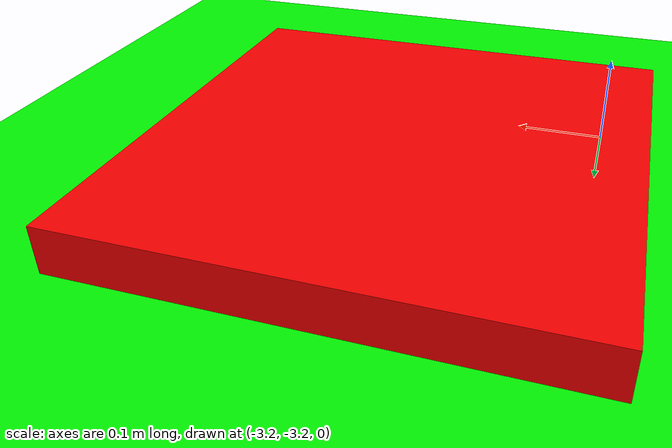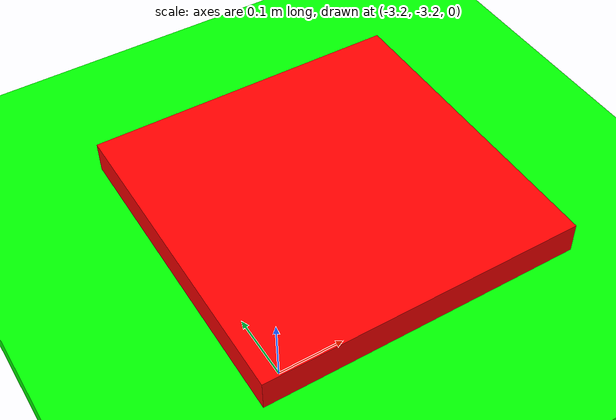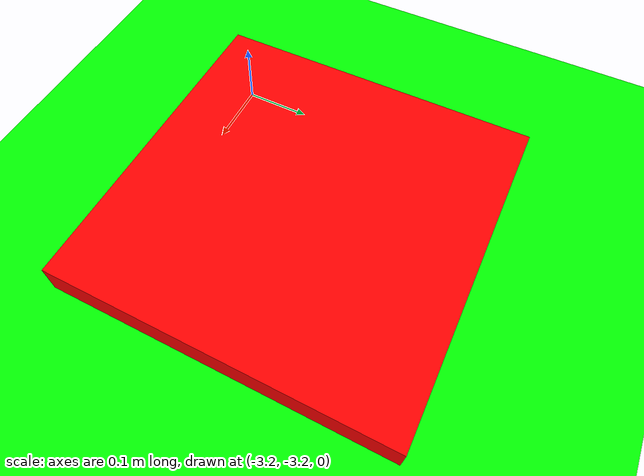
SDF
<?xml version="1.0" ?>
<sdf version="1.6">
  <world name="landmark_simulation">
    <include>
      <uri>model://sun</uri>
    </include>

    <!-- Ground plane -->
    <include>
      <uri>model://ground_plane</uri>
    </include>

    <!-- Green external area (4m x 4m), origin shifted to (-2, -2) -->
    <model name="external_area">
      <static>true</static>
      <pose>-3 -3 0 0 0 0</pose>
      <link name="floor">
        <collision name="collision">
          <geometry>
            <box>
              <size>4 4 0.05</size>
            </box>
          </geometry>
        </collision>
        <visual name="visual">
          <geometry>
            <box>
              <size>4 4 0.05</size>
            </box>
          </geometry>
          <material>
            <ambient>0 1 0 1</ambient>
            <diffuse>0 1 0 1</diffuse>
          </material>
        </visual>
      </link>
    </model>

    <!-- Red middle landing area (0.5m x 0.5m), positioned at (-0.25, -0.25) relative to the green area -->
    <model name="landing_area">
      <static>true</static>
      <pose>-3 -3 0.05 0 0 0</pose>
      <link name="landing">
        <collision name="collision">
          <geometry>
            <box>
              <size>0.5 0.5 0.05</size>
            </box>
          </geometry>
        </collision>
        <visual name="visual">
          <geometry>
            <box>
              <size>0.5 0.5 0.05</size>
            </box>
          </geometry>
          <material>
            <ambient>1 0 0 1</ambient>
            <diffuse>1 0 0 1</diffuse>
          </material>
        </visual>
      </link>
    </model>

  </world>
</sdf>
